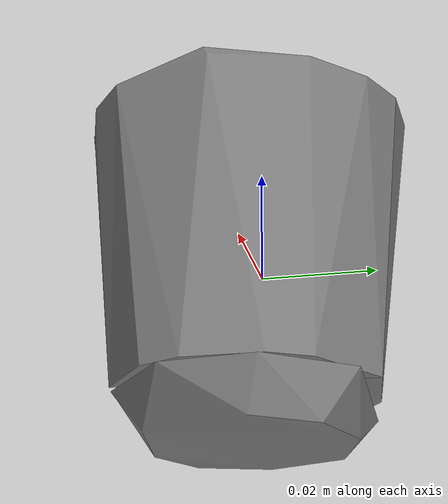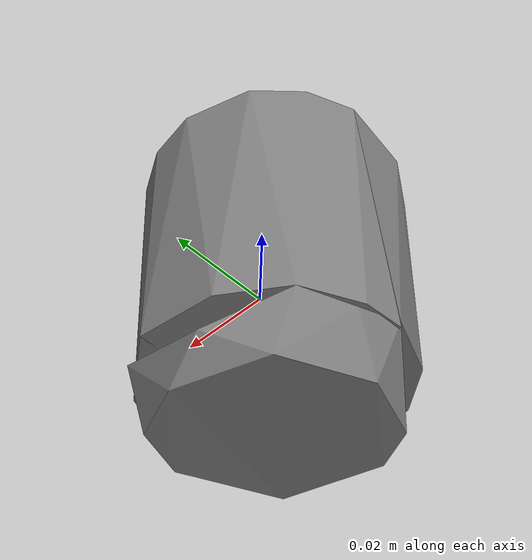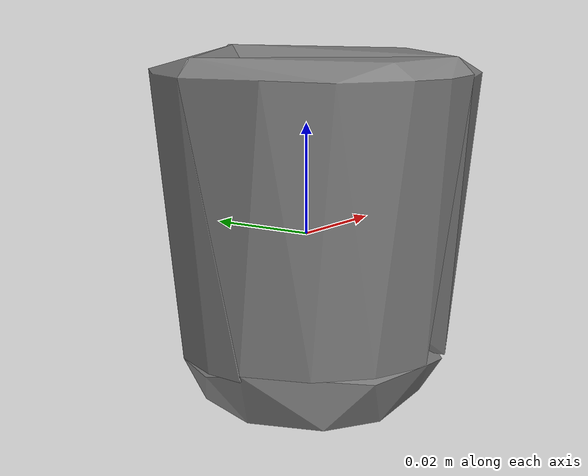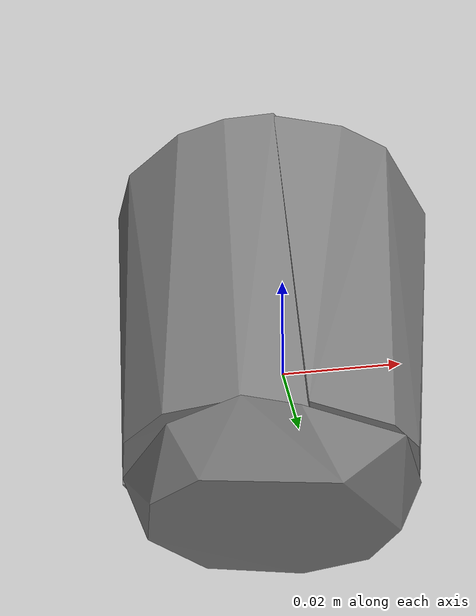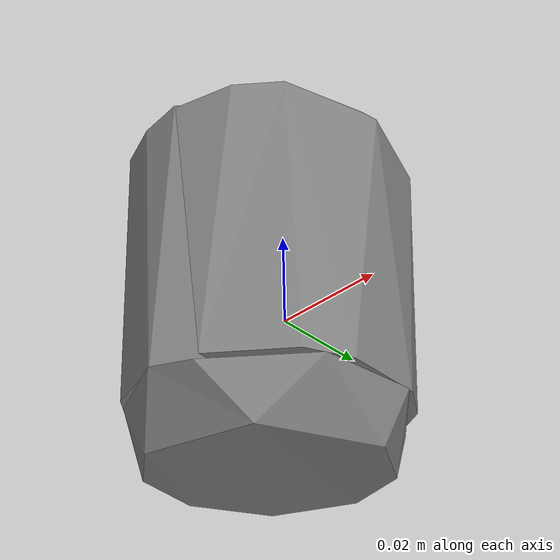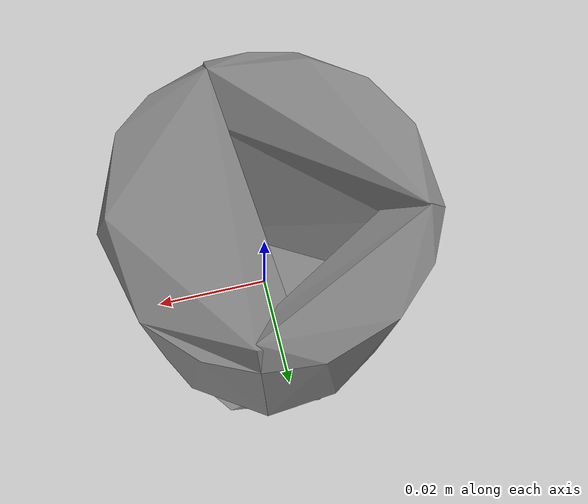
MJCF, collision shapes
<mujoco model="a_cups">
  <compiler angle="radian" />

  <asset>
    <mesh name="a_cups_visual_mesh" file="a_cups/textured.obj" />
    <mesh name="a_cups_collision_mesh_0" file="a_cups/textured_coacd_0.stl" />
    <mesh name="a_cups_collision_mesh_1" file="a_cups/textured_coacd_1.stl" />
    <mesh name="a_cups_collision_mesh_2" file="a_cups/textured_coacd_2.stl" />
    <mesh name="a_cups_collision_mesh_3" file="a_cups/textured_coacd_3.stl" />
    <texture name="a_cups_texture" type="2d" file="a_cups/texture_map.png" />
    <material name="a_cups_material" texture="a_cups_texture" />
  </asset>

  <worldbody>
    <body name="a_cups" pos="0 0 0" euler="0 0 0">
      <freejoint name="a_cups_joint" />
      <geom name="a_cups_visual_geom" type="mesh" mesh="a_cups_visual_mesh" material="a_cups_material" pos="0.03054243478832419 0.04266839741228885 -0.028457527482021325" euler="0 0 0" contype="0" conaffinity="0" group="0" />
      <geom name="a_cups_collision_geom_0" type="mesh" mesh="a_cups_collision_mesh_0" pos="0.03054243478832419 0.04266839741228885 -0.028457527482021325" euler="0 0 0" contype="1" conaffinity="1" group="3" />
      <geom name="a_cups_collision_geom_1" type="mesh" mesh="a_cups_collision_mesh_1" pos="0.03054243478832419 0.04266839741228885 -0.028457527482021325" euler="0 0 0" contype="1" conaffinity="1" group="3" />
      <geom name="a_cups_collision_geom_2" type="mesh" mesh="a_cups_collision_mesh_2" pos="0.03054243478832419 0.04266839741228885 -0.028457527482021325" euler="0 0 0" contype="1" conaffinity="1" group="3" />
      <geom name="a_cups_collision_geom_3" type="mesh" mesh="a_cups_collision_mesh_3" pos="0.03054243478832419 0.04266839741228885 -0.028457527482021325" euler="0 0 0" contype="1" conaffinity="1" group="3" />
      <inertial pos="0 0 0" euler="0 0 0" mass="0.013" diaginertia="0.001 0.001 0.001" />
    </body>
  </worldbody>
</mujoco>
